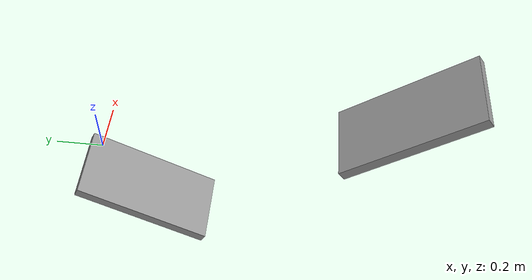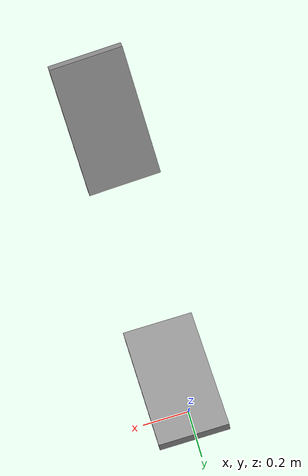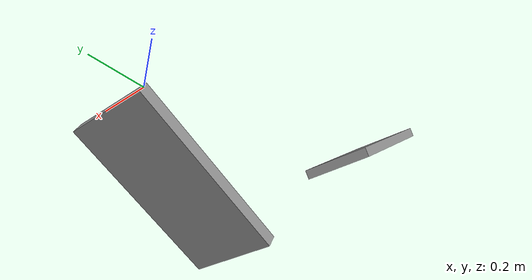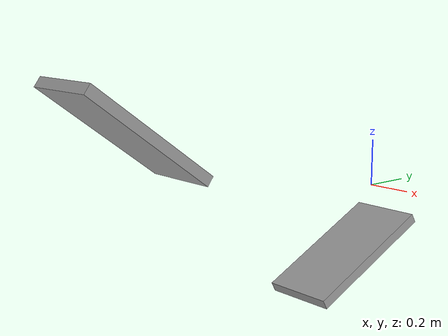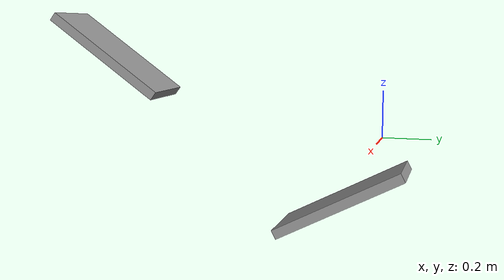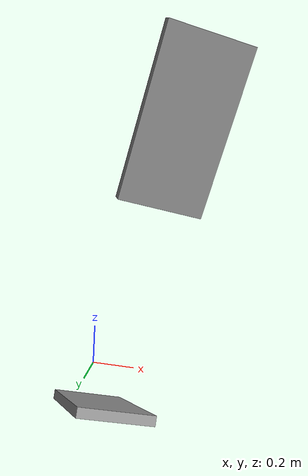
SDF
<?xml version='1.0'?>
<sdf version='1.7'>
  <model name='unit_box'>
    <link name='link'>
      <inertial>
        <mass>0.197124</mass>
        <inertia>
          <ixx>0.00606865</ixx>
          <ixy>0</ixy>
          <ixz>0</ixz>
          <iyy>0.00769182</iyy>
          <iyz>0</iyz>
          <izz>0.00168295</izz>
        </inertia>
        <pose>0 0 0 0 -0 0</pose>
      </inertial>
      <self_collide>0</self_collide>
      <enable_wind>0</enable_wind>
      <kinematic>0</kinematic>
      <pose>-0 -0.164791 -0.279072 -1.08956 0 0</pose>
      <visual name='visual'>
        <geometry>
          <box>
            <size>0.317224 0.042657 0.606311</size>
          </box>
        </geometry>
        <material>
          <script>
            <name>Gazebo/Grey</name>
            <uri>file://media/materials/scripts/gazebo.material</uri>
          </script>
          <shader type='pixel'/>
        </material>
        <pose>0 0 0 0 -0 0</pose>
        <transparency>0</transparency>
        <cast_shadows>1</cast_shadows>
      </visual>
      <collision name='collision'>
        <laser_retro>0</laser_retro>
        <max_contacts>10</max_contacts>
        <pose>0 0 0 0 -0 0</pose>
        <geometry>
          <box>
            <size>0.317224 0.042657 0.606311</size>
          </box>
        </geometry>
        <surface>
          <friction>
            <ode>
              <mu>1</mu>
              <mu2>1</mu2>
              <fdir1>0 0 0</fdir1>
              <slip1>0</slip1>
              <slip2>0</slip2>
            </ode>
            <torsional>
              <coefficient>1</coefficient>
              <patch_radius>0</patch_radius>
              <surface_radius>0</surface_radius>
              <use_patch_radius>1</use_patch_radius>
              <ode>
                <slip>0</slip>
              </ode>
            </torsional>
          </friction>
          <bounce>
            <restitution_coefficient>0</restitution_coefficient>
            <threshold>1e+06</threshold>
          </bounce>
          <contact>
            <collide_without_contact>0</collide_without_contact>
            <collide_without_contact_bitmask>1</collide_without_contact_bitmask>
            <collide_bitmask>1</collide_bitmask>
            <ode>
              <soft_cfm>0</soft_cfm>
              <soft_erp>0.2</soft_erp>
              <kp>1e+13</kp>
              <kd>1</kd>
              <max_vel>0.01</max_vel>
              <min_depth>0</min_depth>
            </ode>
            <bullet>
              <split_impulse>1</split_impulse>
              <split_impulse_penetration_threshold>-0.01</split_impulse_penetration_threshold>
              <soft_cfm>0</soft_cfm>
              <soft_erp>0.2</soft_erp>
              <kp>1e+13</kp>
              <kd>1</kd>
            </bullet>
          </contact>
        </surface>
      </collision>
    </link>
    <link name='link_clone'>
      <inertial>
        <mass>0.197124</mass>
        <inertia>
          <ixx>0.00606865</ixx>
          <ixy>0</ixy>
          <ixz>0</ixz>
          <iyy>0.00769182</iyy>
          <iyz>0</iyz>
          <izz>0.00168295</izz>
        </inertia>
        <pose>0 0 0 0 -0 0</pose>
      </inertial>
      <self_collide>0</self_collide>
      <enable_wind>0</enable_wind>
      <kinematic>0</kinematic>
      <pose>-0.010265 -1.24645 0.341356 0.940707 0.009308 0.032248</pose>
      <visual name='visual'>
        <geometry>
          <box>
            <size>0.317224 0.042657 0.606311</size>
          </box>
        </geometry>
        <material>
          <script>
            <name>Gazebo/Grey</name>
            <uri>file://media/materials/scripts/gazebo.material</uri>
          </script>
          <shader type='pixel'/>
        </material>
        <pose>0 0 0 0 -0 0</pose>
        <transparency>0</transparency>
        <cast_shadows>1</cast_shadows>
      </visual>
      <collision name='collision'>
        <laser_retro>0</laser_retro>
        <max_contacts>10</max_contacts>
        <pose>0 0 0 0 -0 0</pose>
        <geometry>
          <box>
            <size>0.317224 0.042657 0.606311</size>
          </box>
        </geometry>
        <surface>
          <friction>
            <ode>
              <mu>1</mu>
              <mu2>1</mu2>
              <fdir1>0 0 0</fdir1>
              <slip1>0</slip1>
              <slip2>0</slip2>
            </ode>
            <torsional>
              <coefficient>1</coefficient>
              <patch_radius>0</patch_radius>
              <surface_radius>0</surface_radius>
              <use_patch_radius>1</use_patch_radius>
              <ode>
                <slip>0</slip>
              </ode>
            </torsional>
          </friction>
          <bounce>
            <restitution_coefficient>0</restitution_coefficient>
            <threshold>1e+06</threshold>
          </bounce>
          <contact>
            <collide_without_contact>0</collide_without_contact>
            <collide_without_contact_bitmask>1</collide_without_contact_bitmask>
            <collide_bitmask>1</collide_bitmask>
            <ode>
              <soft_cfm>0</soft_cfm>
              <soft_erp>0.2</soft_erp>
              <kp>1e+13</kp>
              <kd>1</kd>
              <max_vel>0.01</max_vel>
              <min_depth>0</min_depth>
            </ode>
            <bullet>
              <split_impulse>1</split_impulse>
              <split_impulse_penetration_threshold>-0.01</split_impulse_penetration_threshold>
              <soft_cfm>0</soft_cfm>
              <soft_erp>0.2</soft_erp>
              <kp>1e+13</kp>
              <kd>1</kd>
            </bullet>
          </contact>
        </surface>
      </collision>
    </link>
    <static>1</static>
    <allow_auto_disable>1</allow_auto_disable>
  </model>
</sdf>
